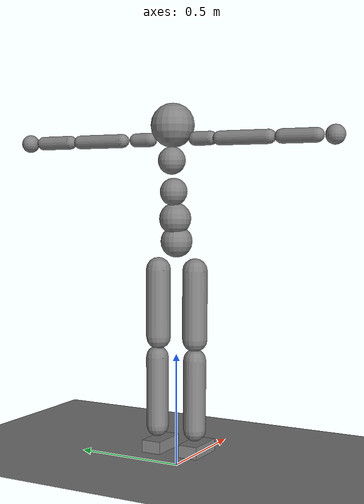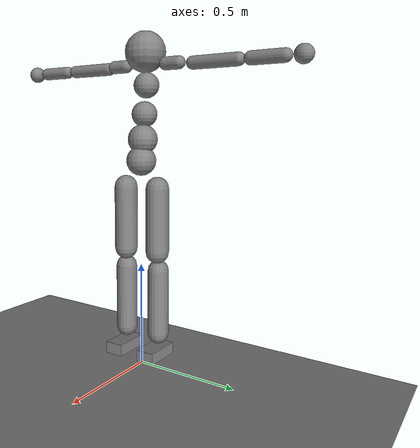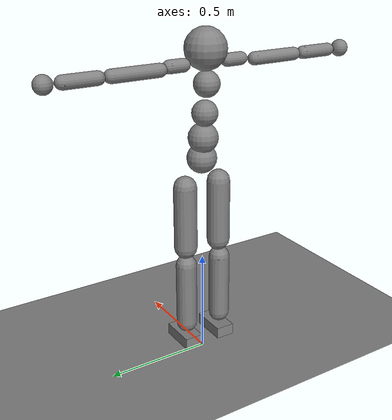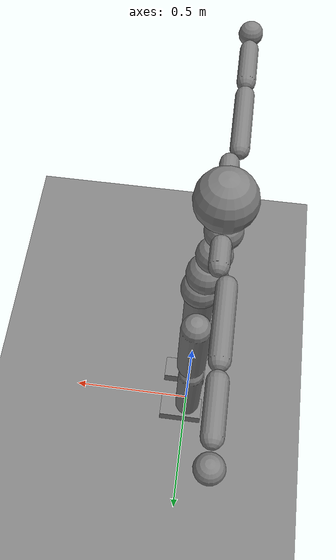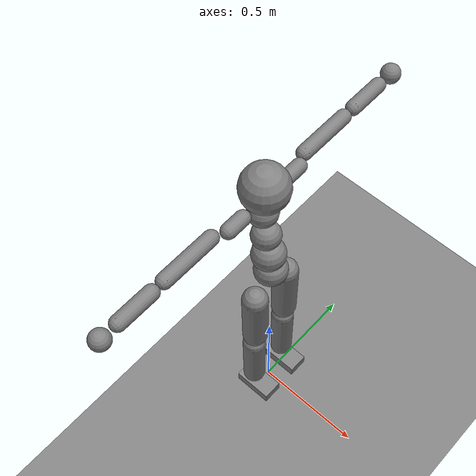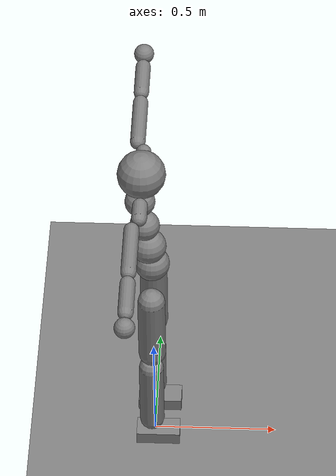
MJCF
<mujoco model="humanoid">

  <statistic extent="2" center="0 0 1"/>

  <option timestep="0.00555"/>

  <default>
    <motor ctrlrange="-1 1" ctrllimited="true"/>
    <default class="body">
      <geom type="capsule" condim="1" friction="1.0 0.05 0.05" solimp=".9 .99 .003" solref=".015 1"/>
      <joint type="hinge" damping="0.1" stiffness="5" armature=".007" limited="true" solimplimit="0 .99 .01"/>
      <site size=".04" group="3"/>
      <default class="force-torque">
        <site type="box" size=".01 .01 .02" rgba="1 0 0 1" />
      </default>
      <default class="touch">
        <site type="capsule" rgba="0 0 1 .3"/>
      </default>
    </default>
  </default>

  <worldbody>
    <geom name="floor" type="plane" conaffinity="1" size="100 100 .2"/>
    <body name="Hips" pos="0 0 1" childclass="body">
      <freejoint name="root"/>
      <site name="root" class="force-torque"/>
      <geom name="Hips" type="sphere" pos="0 0 0" size=".07" density="2226"/>
      <site name="Hips" class="touch" type="sphere" pos="0 0 0" size="0.091"/>

      <body name="Spine" pos="-0.012273 0 0.099235">
        <light name="top" pos="0 0 2" mode="trackcom"/>
        <camera name="back" pos="-3 0 1" xyaxes="0 -1 0 1 0 2" mode="trackcom"/>
        <camera name="side" pos="0 -3 1" xyaxes="1 0 0 0 1 2" mode="trackcom"/>
        <joint name="spine_x" pos="0 0 0" axis="1 0 0" range="-60 60" stiffness="1000" damping="100" armature=".02"/>
        <joint name="spine_y" pos="0 0 0" axis="0 1 0" range="-60 90" stiffness="1000" damping="100" armature=".02"/>
        <joint name="spine_z" pos="0 0 0" axis="0 0 1" range="-50 50" stiffness="1000" damping="100" armature=".02"/>
        <geom name="Spine" type="sphere" pos="0 0 0" size="0.07" density="1794"/>
        <site name="Spine" class="touch" type="sphere" pos="0 0 0" size="0.111"/>

        <body name="Spine1" pos="-0.014223 -0.000001 0.116454">
          <joint name="spine1_x" pos="0 0 0" axis="1 0 0" range="-60 60" stiffness="1000" damping="100" armature=".02"/>
          <joint name="spine1_y" pos="0 0 0" axis="0 1 0" range="-60 90" stiffness="1000" damping="100" armature=".02"/>
          <joint name="spine1_z" pos="0 0 0" axis="0 0 1" range="-50 50" stiffness="1000" damping="100" armature=".02"/>
          <geom name="Spine1" type="sphere" pos="0 0 0" size="0.06" density="1794"/>

          <body name="Spine2" pos="-0.016265 0.000001 0.133602">
            <joint name="spine2_x" pos="0 0 0" axis="1 0 0" range="-60 60" stiffness="1000" damping="100" armature=".02"/>
            <joint name="spine2_y" pos="0 0 0" axis="0 1 0" range="-60 90" stiffness="1000" damping="100" armature=".02"/>
            <joint name="spine2_z" pos="0 0 0" axis="0 0 1" range="-50 50" stiffness="1000" damping="100" armature=".02"/>
            <geom name="Spine2" type="sphere" pos="0 0 0" size="0.06" density="1794"/>

            <body name="Neck" pos="0.007929 0 0.150325">
              <joint name="neck_x" axis="1 0 0" range="-50 50" stiffness="100" damping="10" armature=".01"/>
              <joint name="neck_y" axis="0 1 0" range="-40 60" stiffness="100" damping="10" armature=".01"/>
              <joint name="neck_z" axis="0 0 1" range="-45 45" stiffness="100" damping="10" armature=".01"/>
              <geom name="Neck" type="sphere" pos="0 0 0" size="0.095" density="1081"/>
              <site name="Neck" class="touch" pos="0 0 0" type="sphere" size="0.103"/>
              <camera name="egocentric" pos=".103 0 0.175" xyaxes="0 -1 0 .1 0 1" fovy="80"/>
            </body>

            <body name="LeftShoulder" pos="0.007056 0.061058 0.091104">
              <joint name="left_shoulder_x" axis="1 0 0" range="-180 45" stiffness="400" damping="40" armature=".02"/>
              <joint name="left_shoulder_y" axis="0 1 0" range="-180 60" stiffness="400" damping="40" armature=".02"/>
              <joint name="left_shoulder_z" axis="0 0 1"  range="-90 90" stiffness="400" damping="40" armature=".02"/>
              <geom name="LeftShoulder" fromto="0 0.05 0 0 0.12 0" size=".03" density="982"/>

              <body name="LeftArm" pos="-0.026009 0.126550 -0.002659">
                <joint name="left_arm_x" axis="1 0 0" range="-180 45" stiffness="400" damping="40" armature=".02"/>
                <joint name="left_arm_y" axis="0 1 0" range="-180 60" stiffness="400" damping="40" armature=".02"/>
                <joint name="left_arm_z" axis="0 0 1"  range="-90 90" stiffness="400" damping="40" armature=".02"/>
                <geom name="LeftArm" fromto="0 0.05 0  0 0.27 0" size=".03" density="982"/>
                <site name="LeftArm" class="touch" pos="0 0 -0.14" size="0.046 0.1" zaxis="0 0 1"/>

                <body name="LeftForeArm" pos="0.0 0.274047 0.0">
                  <joint name="left_elbow" axis="0 1 0" range="-160 0" stiffness="300" damping="30" armature=".01"/>
                  <geom name="LeftForeArm" fromto="0 0.0525 0 0 0.20 0" size="0.03" density="1056"/>
                  <site name="LeftForeArm" class="touch" pos="0 0 0.12" size="0.041 0.0685" zaxis="0 1 0"/>

                  <body name="LeftHand" pos="0.0 0.276145 0.0">
                    <joint name="left_hand_x" axis="1 0 0" range="-180 45" stiffness="400" damping="40" armature=".02"/>
                    <joint name="left_hand_y" axis="0 1 0" range="-180 60" stiffness="400" damping="40" armature=".02"/>
                    <joint name="left_hand_z" axis="0 0 1"  range="-90 90" stiffness="400" damping="40" armature=".02"/>
                    <geom name="LeftHand" type="sphere" size=".04" density="1865"/>
                    <site name="LeftHand" class="touch" type="sphere" size=".041"/>
                  </body>   <!-- LeftHand -->
                </body>     <!-- LeftForeArm -->
              </body>       <!-- LeftArm -->
            </body>         <!-- LeftShoulder -->

            <body name="RightShoulder" pos="0.007056 -0.061057 0.091105">
              <joint name="right_shoulder_x" axis="1 0 0" range="-180 45" stiffness="400" damping="40" armature=".02"/>
              <joint name="right_shoulder_y" axis="0 1 0" range="-180 60" stiffness="400" damping="40" armature=".02"/>
              <joint name="right_shoulder_z" axis="0 0 1"  range="-90 90" stiffness="400" damping="40" armature=".02"/>
              <geom name="RightShoulder" fromto="0 -0.05 0 0 -0.12 0" size=".03" density="982"/>

              <body name="RightArm" pos="-0.026009 -0.126550 -0.002660">
                <joint name="right_arm_x" axis="1 0 0" range="-180 45" stiffness="400" damping="40" armature=".02"/>
                <joint name="right_arm_y" axis="0 1 0" range="-180 60" stiffness="400" damping="40" armature=".02"/>
                <joint name="right_arm_z" axis="0 0 1"  range="-90 90" stiffness="400" damping="40" armature=".02"/>
                <geom name="RightArm" fromto="0 -0.05 0  0 -0.27 0" size=".03" density="982"/>
                <site name="RightArm" class="touch" pos="0 0 -0.14" size="0.046 0.1" zaxis="0 0 1"/>

                <body name="RightForeArm" pos="0.0 -0.274047 0.0">
                  <joint name="right_elbow" axis="0 1 0" range="-160 0" stiffness="300" damping="30" armature=".01"/>
                  <geom name="RightForeArm" fromto="0 -0.0525 0 0 -0.20 0" size="0.03" density="1056"/>
                  <site name="RightForeArm" class="touch" pos="0 0 -0.12" size="0.041 0.0685" zaxis="0 1 0"/>

                  <body name="RightHand" pos="0.0 -0.276145 0.0">
                    <joint name="right_hand_x" axis="1 0 0" range="-180 45" stiffness="400" damping="40" armature=".02"/>
                    <joint name="right_hand_y" axis="0 1 0" range="-180 60" stiffness="400" damping="40" armature=".02"/>
                    <joint name="right_hand_z" axis="0 0 1"  range="-90 90" stiffness="400" damping="40" armature=".02"/>
                    <geom name="RightHand" type="sphere" size=".04" density="1865"/>
                    <site name="RightHand" class="touch" type="sphere" size=".041"/>
                  </body>   <!-- RightHand -->
                </body>     <!-- RightForeArm -->
              </body>       <!-- RightArm -->
            </body>         <!-- RightShoulder -->

          </body>           <!-- Spine2 -->
        </body>             <!-- Spine1 -->
      </body>               <!-- Spine -->

      <body name="LeftUpLeg" pos="-0.000554 0.091245 -0.066564">
        <site name="left_hip" class="force-torque"/>
        <joint name="left_hip_x" axis="1 0 0" range="-60 15" stiffness="500" damping="50" armature=".02"/>
        <joint name="left_hip_y" axis="0 1 0" range="-140 60" stiffness="500" damping="50" armature=".02"/>
        <joint name="left_hip_z" axis="0 0 1" range="-60 35" stiffness="500" damping="50" armature=".02"/>
        <geom name="LeftUpLeg" fromto="0 0 -0.06 0 0 -0.36" size="0.055" density="1269"/>
        <site name="LeftUpLeg" class="touch" pos="0 0 -0.21" size="0.056 0.301" zaxis="0 0 -1"/>

        <body name="LeftLeg" pos="-0.005170 0.002447 -0.405954">
          <site name="left_knee" class="force-torque" pos="0 0 0"/>
          <joint name="left_knee" pos="0 0 0" axis="0 1 0" range="0 160" stiffness="500" damping="50" armature=".02"/>
          <geom name="LeftLeg" fromto="0 0 -0.045 0 0 -0.355"  size=".05" density="1014"/>
          <site name="LeftLeg" class="touch" pos="0 0 -0.2" size="0.051 0.156" zaxis="0 0 -1"/>

          <body name="LeftFoot" pos="-0.020576 -0.002447 -0.420480">
            <site name="left_ankle" class="force-torque"/>
            <joint name="left_ankle_x" pos="0 0 0" axis="1 0 0" range="-30 30" stiffness="400" damping="40" armature=".01"/>
            <joint name="left_ankle_y" pos="0 0 0" axis="0 1 0" range="-55 55" stiffness="400" damping="40" armature=".01"/>
            <joint name="left_ankle_z" pos="0 0 0" axis="0 0 1" range="-40 40" stiffness="400" damping="40" armature=".01"/>
            <geom name="LeftFoot" type="box" pos="0.045 0 -0.0225" size="0.0885 0.045 0.0275" density="1141"/>
            <site name="LeftFoot" class="touch" type="box" pos="0.045 0 -0.0225" size="0.0895 0.055 0.0285"/>
          </body>           <!-- LeftFoot -->
        </body>             <!-- LeftLeg -->
      </body>               <!-- LeftUpLeg -->

      <body name="RightUpLeg" pos="-0.000554 -0.091245 -0.066564">
        <site name="right_hip" class="force-torque"/>
        <joint name="right_hip_x" axis="1 0 0" range="-60 15" stiffness="500" damping="50" armature=".02"/>
        <joint name="right_hip_y" axis="0 1 0" range="-140 60" stiffness="500" damping="50" armature=".02"/>
        <joint name="right_hip_z" axis="0 0 1" range="-60 35" stiffness="500" damping="50" armature=".02"/>
        <geom name="RightUpLeg" fromto="0 0 -0.06 0 0 -0.36" size="0.055" density="1269"/>
        <site name="RightUpLeg" class="touch" pos="0 0 -0.21" size="0.056 0.301" zaxis="0 0 -1"/>

        <body name="RightLeg" pos="-0.005145 -0.002447 -0.405954">
          <site name="right_knee" class="force-torque" pos="0 0 0"/>
          <joint name="right_knee" pos="0 0 0" axis="0 1 0" range="0 160" stiffness="500" damping="50" armature=".02"/>
          <geom name="RightLeg" fromto="0 0 -0.045 0 0 -0.355"  size=".05" density="1014"/>
          <site name="RightLeg" class="touch" pos="0 0 -0.2" size="0.051 0.156" zaxis="0 0 -1"/>

          <body name="RightFoot" pos="-0.020602 0.002447 -0.420479">
            <site name="right_ankle" class="force-torque"/>
            <joint name="right_ankle_x" pos="0 0 0" axis="1 0 0" range="-30 30" stiffness="400" damping="40" armature=".01"/>
            <joint name="right_ankle_y" pos="0 0 0" axis="0 1 0" range="-55 55" stiffness="400" damping="40" armature=".01"/>
            <joint name="right_ankle_z" pos="0 0 0" axis="0 0 1" range="-40 40" stiffness="400" damping="40" armature=".01"/>
            <geom name="RightFoot" type="box" pos="0.045 0 -0.0225" size="0.0885 0.045 0.0275" density="1141"/>
            <site name="RightFoot" class="touch" type="box" pos="0.045 0 -0.0225" size="0.0895 0.055 0.0285"/>
          </body>           <!-- RightFoot -->
        </body>             <!-- RightLeg -->
      </body>               <!-- RightUpLeg -->

    </body>                 <!-- Hips -->
  </worldbody>

  <actuator>
    <motor name='spine_x'       	gear='200' 	joint='spine_x'/>
    <motor name='spine_y'       	gear='200' 	joint='spine_y'/>
    <motor name='spine_z'       	gear='200' 	joint='spine_z'/>

    <motor name='spine1_x'       	gear='200' 	joint='spine1_x'/>
    <motor name='spine1_y'       	gear='200' 	joint='spine1_y'/>
    <motor name='spine1_z'       	gear='200' 	joint='spine1_z'/>

    <motor name='spine2_x'       	gear='200' 	joint='spine2_x'/>
    <motor name='spine2_y'       	gear='200' 	joint='spine2_y'/>
    <motor name='spine2_z'       	gear='200' 	joint='spine2_z'/>

    <motor name='neck_x'          	gear='50' 	joint='neck_x'/>
    <motor name='neck_y'            gear='50' 	joint='neck_y'/>
    <motor name='neck_z'           	gear='50' 	joint='neck_z'/>

    <motor name='right_shoulder_x' 	gear='100' 	joint='right_shoulder_x'/>
    <motor name='right_shoulder_y' 	gear='100' 	joint='right_shoulder_y'/>
    <motor name='right_shoulder_z' 	gear='100' 	joint='right_shoulder_z'/>

    <motor name='right_arm_x' 	gear='100' 	joint='right_arm_x'/>
    <motor name='right_arm_y' 	gear='100' 	joint='right_arm_y'/>
    <motor name='right_arm_z' 	gear='100' 	joint='right_arm_z'/>

    <motor name='right_elbow'     	gear='70' 	joint='right_elbow'/>

    <motor name='right_hand_x' 	gear='100' 	joint='right_hand_x'/>
    <motor name='right_hand_y' 	gear='100' 	joint='right_hand_y'/>
    <motor name='right_hand_z' 	gear='100' 	joint='right_hand_z'/>

    <motor name='left_shoulder_x' 	gear='100' 	joint='left_shoulder_x'/>
    <motor name='left_shoulder_y' 	gear='100' 	joint='left_shoulder_y'/>
    <motor name='left_shoulder_z' 	gear='100' 	joint='left_shoulder_z'/>

    <motor name='left_arm_x' 	gear='100' 	joint='left_arm_x'/>
    <motor name='left_arm_y' 	gear='100' 	joint='left_arm_y'/>
    <motor name='left_arm_z' 	gear='100' 	joint='left_arm_z'/>

    <motor name='left_elbow'      	gear='70' 	joint='left_elbow'/>

    <motor name='left_hand_x' 	gear='100' 	joint='left_hand_x'/>
    <motor name='left_hand_y' 	gear='100' 	joint='left_hand_y'/>
    <motor name='left_hand_z' 	gear='100' 	joint='left_hand_z'/>

    <motor name='right_hip_x'     	gear='200' 	joint='right_hip_x'/>
    <motor name='right_hip_z'     	gear='200' 	joint='right_hip_z'/>
    <motor name='right_hip_y'     	gear='200' 	joint='right_hip_y'/>

    <motor name='right_knee'      	gear='150' 	joint='right_knee'/>

    <motor name='right_ankle_x'   	gear='90' 	joint='right_ankle_x'/>
    <motor name='right_ankle_y'   	gear='90' 	joint='right_ankle_y'/>
    <motor name='right_ankle_z'   	gear='90' 	joint='right_ankle_z'/>

    <motor name='left_hip_x'      	gear='200' 	joint='left_hip_x'/>
    <motor name='left_hip_z'      	gear='200' 	joint='left_hip_z'/>
    <motor name='left_hip_y'      	gear='200' 	joint='left_hip_y'/>

    <motor name='left_knee'       	gear='150' 	joint='left_knee'/>

    <motor name='left_ankle_x'    	gear='90' 	joint='left_ankle_x'/>
    <motor name='left_ankle_y'    	gear='90' 	joint='left_ankle_y'/>
    <motor name='left_ankle_z'    	gear='90' 	joint='left_ankle_z'/>
  </actuator>

  <sensor>
    <subtreelinvel name="Hips_subtreelinvel" body="Hips"/>
    <accelerometer name="root_accel"    site="root"/>
    <velocimeter name="root_vel"        site="root"/>
    <gyro name="root_gyro"              site="root"/>

    <force name="left_ankle_force"       site="LeftFoot"/>
    <force name="right_ankle_force"      site="RightFoot"/>
    <force name="left_knee_force"        site="LeftLeg"/>
    <force name="right_knee_force"       site="RightLeg"/>
    <force name="left_hip_force"         site="LeftUpLeg"/>
    <force name="right_hip_force"        site="RightUpLeg"/>

    <torque name="left_ankle_torque"     site="LeftFoot"/>
    <torque name="right_ankle_torque"    site="RightFoot"/>
    <torque name="left_knee_torque"      site="LeftLeg"/>
    <torque name="right_knee_torque"     site="RightLeg"/>
    <torque name="left_hip_torque"       site="LeftUpLeg"/>
    <torque name="right_hip_torque"      site="RightUpLeg"/>

    <touch name="Hips_touch"             site="Hips"/>
    <touch name="Spine_touch"            site="Spine"/>
    <touch name="Neck_touch"             site="Neck"/>

    <touch name="RightArm_touch"         site="RightArm"/>
    <touch name="RightForeArm_touch"     site="RightForeArm"/>
    <touch name="RightHand_touch"        site="RightHand"/>

    <touch name="LeftArm_touch"          site="LeftArm"/>
    <touch name="LeftForeArm_touch"      site="LeftForeArm"/>
    <touch name="LeftHand_touch"         site="LeftHand"/>

    <touch name="LeftUpLeg_touch"      site="LeftUpLeg"/>
    <touch name="LeftLeg_touch"       site="LeftLeg"/>
    <touch name="LeftFoot_touch"       site="LeftFoot"/>

    <touch name="RightUpLeg_touch"      site="RightUpLeg"/>
    <touch name="RightLeg_touch"       site="RightLeg"/>
    <touch name="RightFoot_touch"       site="RightFoot"/>
  </sensor>

</mujoco>
